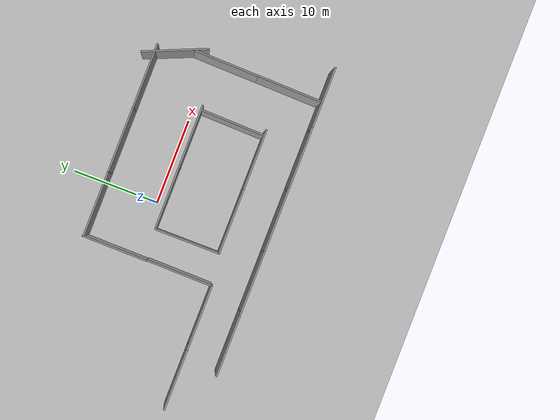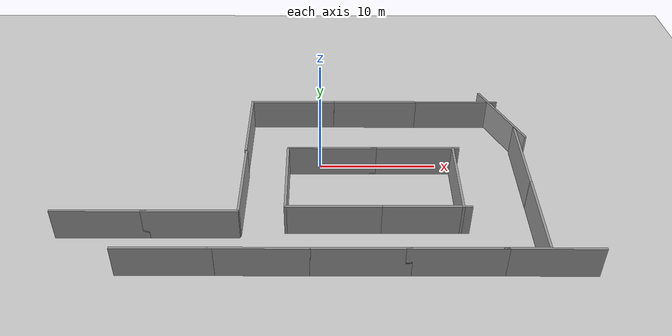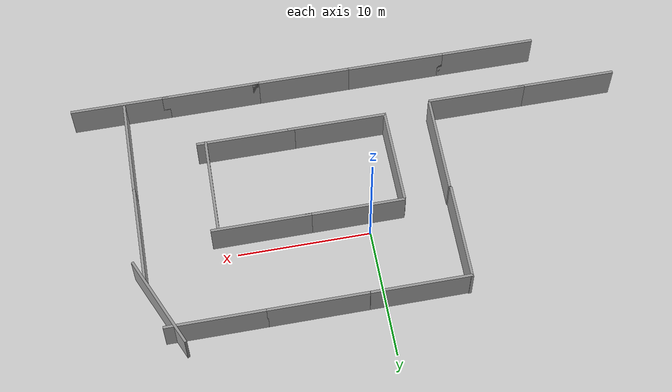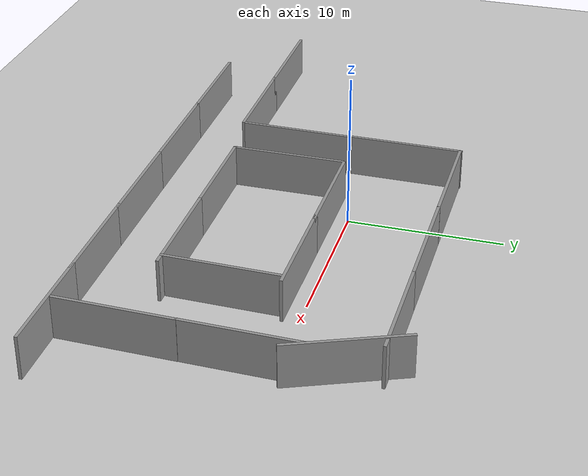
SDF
<sdf version="1.4">
 <world name="default">
  <light name="sun" type="directional">
   <pose>0 0 10 0 -0 0</pose>
   <diffuse>0.8 0.8 0.8 1</diffuse>
   <specular>0.2 0.2 0.2 1</specular>
   <attenuation>
    <range>1000</range>
    <constant>0.9</constant>
    <linear>0.01</linear>
    <quadratic>0.001</quadratic>
   </attenuation>
   <direction>-0.5 0.1 -0.9</direction>
  </light>
  <model name="ground_plane">
   <static>1</static>
   <link name="link">
    <collision name="collision">
     <geometry><plane><normal>0 0 1</normal><size>100 100</size></plane></geometry>
     <surface><friction><ode><mu>100</mu><mu2>50</mu2></ode></friction></surface>
    </collision>
    <visual name="visual">
     <cast_shadows>0</cast_shadows>
     <geometry><plane><normal>0 0 1</normal><size>100 100</size></plane></geometry>
     <material>
      <script><uri>file://media/materials/scripts/gazebo.material</uri><name>Gazebo/Grey</name></script>
     </material>
    </visual>
    <velocity_decay><linear>0</linear><angular>0</angular></velocity_decay>
   </link>
  </model>
  <physics type="ode">
   <max_step_size>0.001</max_step_size>
   <real_time_factor>1</real_time_factor>
   <real_time_update_rate>1000</real_time_update_rate>
   <gravity>0 0 -9.8</gravity>
  </physics>
  <scene><ambient>0.4 0.4 0.4 1</ambient><background>0.7 0.7 0.7 1</background><shadows>1</shadows></scene>
  <spherical_coordinates>
   <surface_model>EARTH_WGS84</surface_model>
   <latitude_deg>0</latitude_deg>
   <longitude_deg>0</longitude_deg>
   <elevation>0</elevation>
   <heading_deg>0</heading_deg>
  </spherical_coordinates>
  <model name="grey_wall">
   <static>1</static>
   <link name="link">
    <pose>0 0 1.4 0 -0 0</pose>
    <collision name="collision"><geometry><box><size>7.5 0.2 2.8</size></box></geometry></collision>
    <visual name="visual">
     <cast_shadows>0</cast_shadows>
     <geometry><box><size>7.5 0.2 2.8</size></box></geometry>
     <material>
      <script>
       <uri>model://grey_wall/materials/scripts</uri>
       <uri>model://grey_wall/materials/textures</uri>
       <name>vrc/grey_wall</name>
      </script>
     </material>
    </visual>
    <velocity_decay><linear>0</linear><angular>0</angular></velocity_decay>
   </link>
   <pose>-2.52554 6 0 0 -0 0</pose>
  </model>
  <model name="grey_wall_0">
   <static>1</static>
   <link name="link">
    <pose>0 0 1.4 0 -0 0</pose>
    <collision name="collision"><geometry><box><size>7.5 0.2 2.8</size></box></geometry></collision>
    <visual name="visual">
     <cast_shadows>0</cast_shadows>
     <geometry><box><size>7.5 0.2 2.8</size></box></geometry>
     <material>
      <script>
       <uri>model://grey_wall/materials/scripts</uri>
       <uri>model://grey_wall/materials/textures</uri>
       <name>vrc/grey_wall</name>
      </script>
     </material>
    </visual>
    <velocity_decay><linear>0</linear><angular>0</angular></velocity_decay>
   </link>
   <pose>-6.24494 2.39785 0 0 -0 1.5641</pose>
  </model>
  <model name="grey_wall_1">
   <static>1</static>
   <link name="link">
    <pose>0 0 1.4 0 -0 0</pose>
    <collision name="collision"><geometry><box><size>7.5 0.2 2.8</size></box></geometry></collision>
    <visual name="visual">
     <cast_shadows>0</cast_shadows>
     <geometry><box><size>7.5 0.2 2.8</size></box></geometry>
     <material>
      <script>
       <uri>model://grey_wall/materials/scripts</uri>
       <uri>model://grey_wall/materials/textures</uri>
       <name>vrc/grey_wall</name>
      </script>
     </material>
    </visual>
    <velocity_decay><linear>0</linear><angular>0</angular></velocity_decay>
   </link>
   <pose>1 -1 0 0 -0 0</pose>
  </model>
  <model name="grey_wall_2">
   <static>1</static>
   <link name="link">
    <pose>0 0 1.4 0 -0 0</pose>
    <collision name="collision"><geometry><box><size>7.5 0.2 2.8</size></box></geometry></collision>
    <visual name="visual">
     <cast_shadows>0</cast_shadows>
     <geometry><box><size>7.5 0.2 2.8</size></box></geometry>
     <material>
      <script>
       <uri>model://grey_wall/materials/scripts</uri>
       <uri>model://grey_wall/materials/textures</uri>
       <name>vrc/grey_wall</name>
      </script>
     </material>
    </visual>
    <velocity_decay><linear>0</linear><angular>0</angular></velocity_decay>
   </link>
   <pose>1.03646 -8.45124 0 0 -0 0</pose>
  </model>
  <model name="grey_wall_3">
   <static>1</static>
   <link name="link">
    <pose>0 0 1.4 0 -0 0</pose>
    <collision name="collision"><geometry><box><size>7.5 0.2 2.8</size></box></geometry></collision>
    <visual name="visual">
     <cast_shadows>0</cast_shadows>
     <geometry><box><size>7.5 0.2 2.8</size></box></geometry>
     <material>
      <script>
       <uri>model://grey_wall/materials/scripts</uri>
       <uri>model://grey_wall/materials/textures</uri>
       <name>vrc/grey_wall</name>
      </script>
     </material>
    </visual>
    <velocity_decay><linear>0</linear><angular>0</angular></velocity_decay>
   </link>
   <pose>-6.23632 -5.15894 0 0 -0 1.56183</pose>
  </model>
  <model name="grey_wall_4">
   <static>1</static>
   <link name="link">
    <pose>0 0 1.4 0 -0 0</pose>
    <collision name="collision"><geometry><box><size>7.5 0.2 2.8</size></box></geometry></collision>
    <visual name="visual">
     <cast_shadows>0</cast_shadows>
     <geometry><box><size>7.5 0.2 2.8</size></box></geometry>
     <material>
      <script>
       <uri>model://grey_wall/materials/scripts</uri>
       <uri>model://grey_wall/materials/textures</uri>
       <name>vrc/grey_wall</name>
      </script>
     </material>
    </visual>
    <velocity_decay><linear>0</linear><angular>0</angular></velocity_decay>
   </link>
   <pose>-2.70579 -4.80905 0 0 -0 1.57398</pose>
  </model>
  <model name="grey_wall_5">
   <static>1</static>
   <link name="link">
    <pose>0 0 1.4 0 -0 0</pose>
    <collision name="collision"><geometry><box><size>7.5 0.2 2.8</size></box></geometry></collision>
    <visual name="visual">
     <cast_shadows>0</cast_shadows>
     <geometry><box><size>7.5 0.2 2.8</size></box></geometry>
     <material>
      <script>
       <uri>model://grey_wall/materials/scripts</uri>
       <uri>model://grey_wall/materials/textures</uri>
       <name>vrc/grey_wall</name>
      </script>
     </material>
    </visual>
    <velocity_decay><linear>0</linear><angular>0</angular></velocity_decay>
   </link>
   <pose>-4.42567 -13 0 0 -0 0</pose>
  </model>
  <model name="grey_wall_6">
   <static>1</static>
   <link name="link">
    <pose>0 0 1.4 0 -0 0</pose>
    <collision name="collision"><geometry><box><size>7.5 0.2 2.8</size></box></geometry></collision>
    <visual name="visual">
     <cast_shadows>0</cast_shadows>
     <geometry><box><size>7.5 0.2 2.8</size></box></geometry>
     <material>
      <script>
       <uri>model://grey_wall/materials/scripts</uri>
       <uri>model://grey_wall/materials/textures</uri>
       <name>vrc/grey_wall</name>
      </script>
     </material>
    </visual>
    <velocity_decay><linear>0</linear><angular>0</angular></velocity_decay>
   </link>
   <pose>3 -13 0 0 -0 0</pose>
  </model>
  <model name="grey_wall_7">
   <static>1</static>
   <link name="link">
    <pose>0 0 1.4 0 -0 0</pose>
    <collision name="collision"><geometry><box><size>7.5 0.2 2.8</size></box></geometry></collision>
    <visual name="visual">
     <cast_shadows>0</cast_shadows>
     <geometry><box><size>7.5 0.2 2.8</size></box></geometry>
     <material>
      <script>
       <uri>model://grey_wall/materials/scripts</uri>
       <uri>model://grey_wall/materials/textures</uri>
       <name>vrc/grey_wall</name>
      </script>
     </material>
    </visual>
    <velocity_decay><linear>0</linear><angular>0</angular></velocity_decay>
   </link>
   <pose>-11.5527 -13 0 0 -0 0</pose>
  </model>
  <model name="grey_wall_8">
   <static>1</static>
   <link name="link">
    <pose>0 0 1.4 0 -0 0</pose>
    <collision name="collision"><geometry><box><size>7.5 0.2 2.8</size></box></geometry></collision>
    <visual name="visual">
     <cast_shadows>0</cast_shadows>
     <geometry><box><size>7.5 0.2 2.8</size></box></geometry>
     <material>
      <script>
       <uri>model://grey_wall/materials/scripts</uri>
       <uri>model://grey_wall/materials/textures</uri>
       <name>vrc/grey_wall</name>
      </script>
     </material>
    </visual>
    <velocity_decay><linear>0</linear><angular>0</angular></velocity_decay>
   </link>
   <pose>-10 -9 0 0 -0 0</pose>
  </model>
  <model name="grey_wall_9">
   <static>1</static>
   <link name="link">
    <pose>0 0 1.4 0 -0 0</pose>
    <collision name="collision"><geometry><box><size>7.5 0.2 2.8</size></box></geometry></collision>
    <visual name="visual">
     <cast_shadows>0</cast_shadows>
     <geometry><box><size>7.5 0.2 2.8</size></box></geometry>
     <material>
      <script>
       <uri>model://grey_wall/materials/scripts</uri>
       <uri>model://grey_wall/materials/textures</uri>
       <name>vrc/grey_wall</name>
      </script>
     </material>
    </visual>
    <velocity_decay><linear>0</linear><angular>0</angular></velocity_decay>
   </link>
   <pose>-17 -9 0 0 -0 0</pose>
  </model>
  <model name="grey_wall_10">
   <static>1</static>
   <link name="link">
    <pose>0 0 1.4 0 -0 0</pose>
    <collision name="collision"><geometry><box><size>7.5 0.2 2.8</size></box></geometry></collision>
    <visual name="visual">
     <cast_shadows>0</cast_shadows>
     <geometry><box><size>7.5 0.2 2.8</size></box></geometry>
     <material>
      <script>
       <uri>model://grey_wall/materials/scripts</uri>
       <uri>model://grey_wall/materials/textures</uri>
       <name>vrc/grey_wall</name>
      </script>
     </material>
    </visual>
    <velocity_decay><linear>0</linear><angular>0</angular></velocity_decay>
   </link>
   <pose>10 -13 0 0 -0 0</pose>
  </model>
  <model name="grey_wall_11">
   <static>1</static>
   <link name="link">
    <pose>0 0 1.4 0 -0 0</pose>
    <collision name="collision"><geometry><box><size>7.5 0.2 2.8</size></box></geometry></collision>
    <visual name="visual">
     <cast_shadows>0</cast_shadows>
     <geometry><box><size>7.5 0.2 2.8</size></box></geometry>
     <material>
      <script>
       <uri>model://grey_wall/materials/scripts</uri>
       <uri>model://grey_wall/materials/textures</uri>
       <name>vrc/grey_wall</name>
      </script>
     </material>
    </visual>
    <velocity_decay><linear>0</linear><angular>0</angular></velocity_decay>
   </link>
   <pose>8 -8.44457 0 0 -0 0</pose>
  </model>
  <model name="grey_wall_12">
   <static>1</static>
   <link name="link">
    <pose>0 0 1.4 0 -0 0</pose>
    <collision name="collision"><geometry><box><size>7.5 0.2 2.8</size></box></geometry></collision>
    <visual name="visual">
     <cast_shadows>0</cast_shadows>
     <geometry><box><size>7.5 0.2 2.8</size></box></geometry>
     <material>
      <script>
       <uri>model://grey_wall/materials/scripts</uri>
       <uri>model://grey_wall/materials/textures</uri>
       <name>vrc/grey_wall</name>
      </script>
     </material>
    </visual>
    <velocity_decay><linear>0</linear><angular>0</angular></velocity_decay>
   </link>
   <pose>8 -1 0 0 -0 0</pose>
  </model>
  <model name="grey_wall_13">
   <static>1</static>
   <link name="link">
    <pose>0 0 1.4 0 -0 0</pose>
    <collision name="collision"><geometry><box><size>7.5 0.2 2.8</size></box></geometry></collision>
    <visual name="visual">
     <cast_shadows>0</cast_shadows>
     <geometry><box><size>7.5 0.2 2.8</size></box></geometry>
     <material>
      <script>
       <uri>model://grey_wall/materials/scripts</uri>
       <uri>model://grey_wall/materials/textures</uri>
       <name>vrc/grey_wall</name>
      </script>
     </material>
    </visual>
    <velocity_decay><linear>0</linear><angular>0</angular></velocity_decay>
   </link>
   <pose>5 6 0 0 -0 0</pose>
  </model>
  <model name="grey_wall_14">
   <static>1</static>
   <link name="link">
    <pose>0 0 1.4 0 -0 0</pose>
    <collision name="collision"><geometry><box><size>7.5 0.2 2.8</size></box></geometry></collision>
    <visual name="visual">
     <cast_shadows>0</cast_shadows>
     <geometry><box><size>7.5 0.2 2.8</size></box></geometry>
     <material>
      <script>
       <uri>model://grey_wall/materials/scripts</uri>
       <uri>model://grey_wall/materials/textures</uri>
       <name>vrc/grey_wall</name>
      </script>
     </material>
    </visual>
    <velocity_decay><linear>0</linear><angular>0</angular></velocity_decay>
   </link>
   <pose>17 -13 0 0 -0 0</pose>
  </model>
  <model name="grey_wall_15">
   <static>1</static>
   <link name="link">
    <pose>0 0 1.4 0 -0 0</pose>
    <collision name="collision"><geometry><box><size>7.5 0.2 2.8</size></box></geometry></collision>
    <visual name="visual">
     <cast_shadows>0</cast_shadows>
     <geometry><box><size>7.5 0.2 2.8</size></box></geometry>
     <material>
      <script>
       <uri>model://grey_wall/materials/scripts</uri>
       <uri>model://grey_wall/materials/textures</uri>
       <name>vrc/grey_wall</name>
      </script>
     </material>
    </visual>
    <velocity_decay><linear>0</linear><angular>0</angular></velocity_decay>
   </link>
   <pose>11.1145 -4.80447 0 0 -0 1.55047</pose>
  </model>
  <model name="grey_wall_16">
   <static>1</static>
   <link name="link">
    <pose>0 0 1.4 0 -0 0</pose>
    <collision name="collision"><geometry><box><size>7.5 0.2 2.8</size></box></geometry></collision>
    <visual name="visual">
     <cast_shadows>0</cast_shadows>
     <geometry><box><size>7.5 0.2 2.8</size></box></geometry>
     <material>
      <script>
       <uri>model://grey_wall/materials/scripts</uri>
       <uri>model://grey_wall/materials/textures</uri>
       <name>vrc/grey_wall</name>
      </script>
     </material>
    </visual>
    <velocity_decay><linear>0</linear><angular>0</angular></velocity_decay>
   </link>
   <pose>16.7733 -9.12813 0 0 0 -1.5919</pose>
  </model>
  <model name="grey_wall_17">
   <static>1</static>
   <link name="link">
    <pose>0 0 1.4 0 -0 0</pose>
    <collision name="collision"><geometry><box><size>7.5 0.2 2.8</size></box></geometry></collision>
    <visual name="visual">
     <cast_shadows>0</cast_shadows>
     <geometry><box><size>7.5 0.2 2.8</size></box></geometry>
     <material>
      <script>
       <uri>model://grey_wall/materials/scripts</uri>
       <uri>model://grey_wall/materials/textures</uri>
       <name>vrc/grey_wall</name>
      </script>
     </material>
    </visual>
    <velocity_decay><linear>0</linear><angular>0</angular></velocity_decay>
   </link>
   <pose>16.9073 -1.73711 0 0 0 -1.5897</pose>
  </model>
  <model name="grey_wall_18">
   <static>1</static>
   <link name="link">
    <pose>0 0 1.4 0 -0 0</pose>
    <collision name="collision"><geometry><box><size>7.5 0.2 2.8</size></box></geometry></collision>
    <visual name="visual">
     <cast_shadows>0</cast_shadows>
     <geometry><box><size>7.5 0.2 2.8</size></box></geometry>
     <material>
      <script>
       <uri>model://grey_wall/materials/scripts</uri>
       <uri>model://grey_wall/materials/textures</uri>
       <name>vrc/grey_wall</name>
      </script>
     </material>
    </visual>
    <velocity_decay><linear>0</linear><angular>0</angular></velocity_decay>
   </link>
   <pose>16.1925 3.96464 0.054234 0 0 -1.16735</pose>
  </model>
  <model name="grey_wall_19">
   <static>1</static>
   <link name="link">
    <pose>0 0 1.4 0 -0 0</pose>
    <collision name="collision"><geometry><box><size>7.5 0.2 2.8</size></box></geometry></collision>
    <visual name="visual">
     <cast_shadows>0</cast_shadows>
     <geometry><box><size>7.5 0.2 2.8</size></box></geometry>
     <material>
      <script>
       <uri>model://grey_wall/materials/scripts</uri>
       <uri>model://grey_wall/materials/textures</uri>
       <name>vrc/grey_wall</name>
      </script>
     </material>
    </visual>
    <velocity_decay><linear>0</linear><angular>0</angular></velocity_decay>
   </link>
   <pose>12.421 6 0 0 -0 0</pose>
  </model>
 </world>
</sdf>
